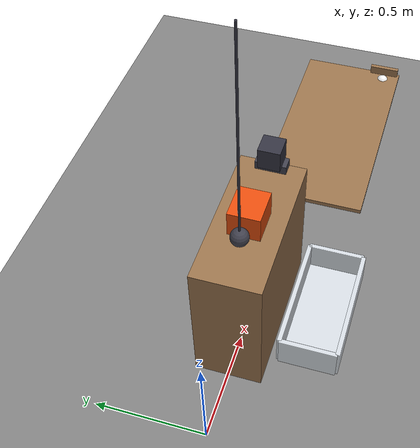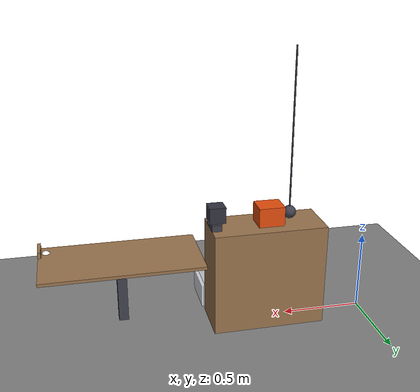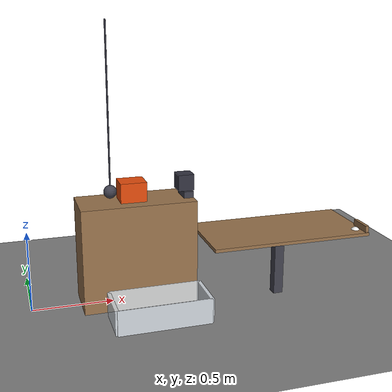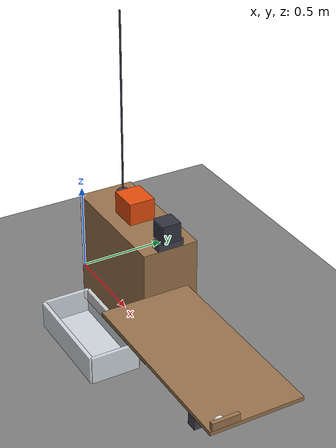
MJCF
<mujoco model="pendulum_cart_weight_seesaw_ball_cup">
  <compiler angle="radian"/>
  <option timestep="0.002"/>
  <worldbody>
    <geom name="floor" type="plane" size="6 6 0.1" friction="0.5 0.005 0.0001"/>
    <body name="pendulum" pos="0.5 0 1.71">
      <joint name="pendulum_hinge" type="hinge" pos="0 0 0" axis="0 1 0"/>
      <geom name="pendulum" type="sphere" pos="0 0 -1" size="0.04" mass="1" rgba="0.25 0.25 0.3 1"/>
      <geom name="pendulum rod" type="capsule" size="0.005" fromto="0 0 0 0 0 -0.96" mass="0.05" contype="0" conaffinity="0" rgba="0.2 0.2 0.25 1"/>
    </body>
    <body name="track">
      <geom name="track" type="box" pos="0.65 0 0.325" size="0.35 0.15 0.325" friction="0.1 0.005 0.0001" rgba="0.6 0.45 0.3 1"/>
    </body>
    <body name="cart" pos="0.63 0 0.71">
      <freejoint/>
      <geom name="cart" type="box" pos="0 0 0" size="0.08 0.07 0.06" mass="0.5" friction="0.1 0.005 0.0001" rgba="0.9 0.3 0.05 1"/>
    </body>
    <body name="ledge">
      <geom name="ledge" type="box" pos="0.97 0 0.67" size="0.03 0.07 0.02" friction="0.1 0.005 0.0001" rgba="0.25 0.25 0.3 1"/>
    </body>
    <body name="weight" pos="0.96 0 0.74">
      <freejoint/>
      <geom name="weight" type="box" pos="0 0 0" size="0.05 0.05 0.05" mass="1" friction="0.1 0.005 0.0001" rgba="0.2 0.2 0.25 1"/>
    </body>
    <body name="seesaw stand">
      <geom name="seesaw stand" type="box" pos="1.53 -0.16 0.16" size="0.03 0.03 0.16" rgba="0.25 0.25 0.3 1"/>
    </body>
    <body name="seesaw" pos="1.53 -0.16 0.42">
      <joint name="seesaw_hinge" type="hinge" pos="0 0 0" axis="0 1 0" limited="true" range="-0.785398 0.10472"/>
      <geom name="seesaw" type="box" pos="0 0 0" size="0.5 0.24 0.01" mass="0.85" friction="0.6 0.005 0.0001" rgba="0.6 0.45 0.3 1"/>
      <geom name="seesaw lip" type="box" pos="0.49 -0.16 0.03" size="0.01 0.07 0.02" mass="0.03" rgba="0.6 0.45 0.3 1"/>
    </body>
    <body name="ball" pos="1.98 -0.32 0.415">
      <freejoint/>
      <geom name="ball" type="sphere" pos="0 0 0" size="0.03" mass="0.05" condim="6" friction="0.8 0.01 0.004" solref="0.01 1" rgba="0.95 0.95 0.95 1"/>
    </body>
    <body name="cup">
      <geom name="cup_base" type="box" pos="0.72 -0.32 0.01" size="0.28 0.13 0.01" friction="0.8 0.01 0.004" solref="0.01 1" rgba="0.92 0.95 0.98 0.85"/>
      <geom name="cup_near_wall" type="box" pos="0.44 -0.32 0.075" size="0.01 0.13 0.075" friction="0.8 0.01 0.004" solref="0.01 1" rgba="0.92 0.95 0.98 0.85"/>
      <geom name="cup_far_wall" type="box" pos="1 -0.32 0.075" size="0.01 0.13 0.075" friction="0.8 0.01 0.004" solref="0.01 1" rgba="0.92 0.95 0.98 0.85"/>
      <geom name="cup_left_wall" type="box" pos="0.72 -0.19 0.075" size="0.28 0.01 0.075" friction="0.8 0.01 0.004" solref="0.01 1" rgba="0.92 0.95 0.98 0.85"/>
      <geom name="cup_right_wall" type="box" pos="0.72 -0.45 0.075" size="0.28 0.01 0.075" friction="0.8 0.01 0.004" solref="0.01 1" rgba="0.92 0.95 0.98 0.85"/>
    </body>
  </worldbody>
  <keyframe>
    <key name="start" qpos="1.15925 0.63 0 0.71 1 0 0 0 0.96 0 0.74 1 0 0 0 0.10472 1.98 -0.32 0.415 1 0 0 0" qvel="0 0 0 0 0 0 0 0 0 0 0 0 0 0 0 0 0 0 0 0"/>
  </keyframe>
</mujoco>
